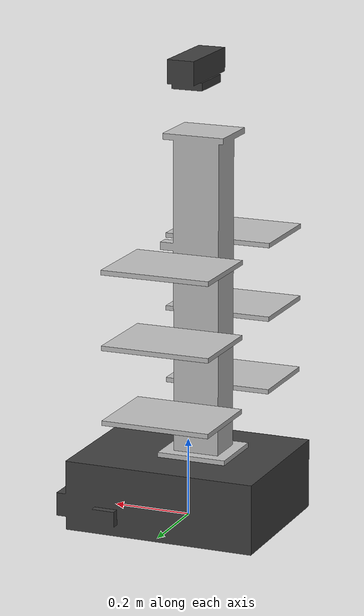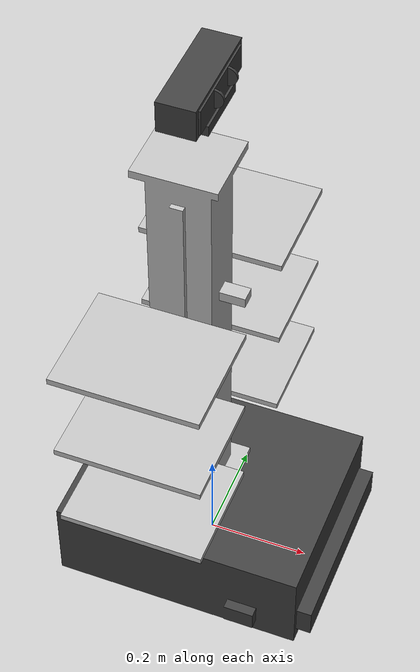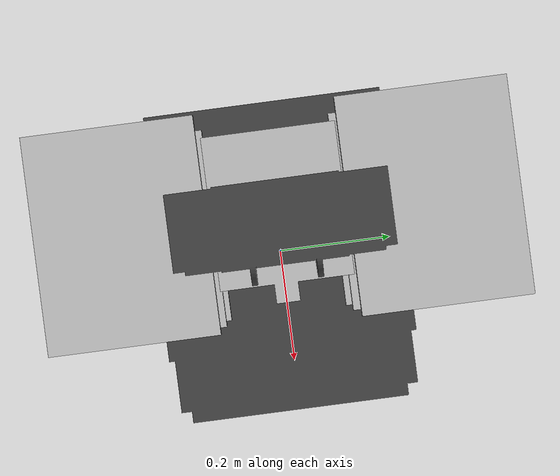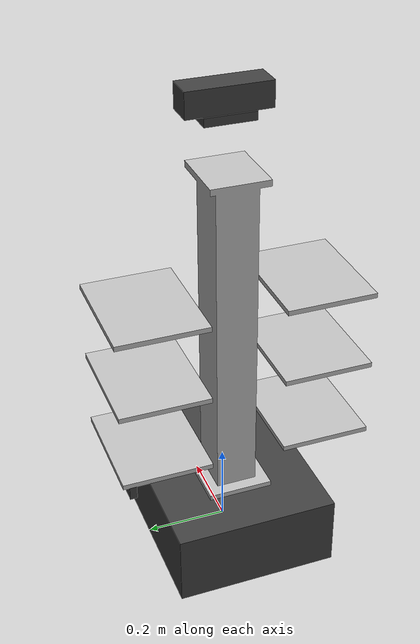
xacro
<?xml version="1.0"?>

<robot name="delivery_robot" xmlns:xacro="http://www.ros.org/wiki/xacro">

  <!-- ======================================================================
       EXTERNAL MACRO FILES
       ====================================================================== -->
  <xacro:include filename="$(find robot_description_pkg)/urdf/materials.xacro"/>
  <xacro:include filename="$(find robot_description_pkg)/urdf/inertia_macros.xacro"/>

  <!-- ======================================================================
       GLOBAL ROBOT PARAMETERS
       ====================================================================== -->

  <!-- Chassis -->
  <xacro:property name="chassis_length"       value="0.500"/>
  <xacro:property name="chassis_width"        value="0.400"/>
  <xacro:property name="chassis_height"       value="0.180"/>
  <xacro:property name="chassis_mass"         value="18.0"/>

  <!-- Body Column -->
  <xacro:property name="body_length"          value="0.120"/>
  <xacro:property name="body_width"           value="0.100"/>
  <xacro:property name="body_height"          value="0.820"/>
  <xacro:property name="body_mass"            value="6.0"/>
  <xacro:property name="body_z_offset"        value="${chassis_height / 2.0 + body_height / 2.0}"/>

  <!-- Wheels (parameters exported for wheels.xacro) -->
  <xacro:property name="wheel_radius"         value="0.080"/>
  <xacro:property name="wheel_width"          value="0.055"/>
  <xacro:property name="wheel_mass"           value="1.20"/>
  <xacro:property name="wheel_x_offset"       value="0.140"/>
  <xacro:property name="wheel_y_offset"       value="0.230"/>
  <xacro:property name="wheel_z_offset"       value="0.0"/>

  <!-- Casters -->
  <xacro:property name="caster_radius"        value="0.045"/>
  <xacro:property name="caster_mass"          value="0.30"/>
  <xacro:property name="caster_x_offset"      value="-0.175"/>
  <xacro:property name="caster_y_offset"      value="0.140"/>
  <xacro:property name="caster_z_offset"      value="${-(wheel_radius - caster_radius)}"/>

  <!-- Shelves -->
  <xacro:property name="shelf_length"         value="0.280"/>
  <xacro:property name="shelf_width"          value="0.220"/>
  <xacro:property name="shelf_thickness"      value="0.012"/>
  <xacro:property name="shelf_mass"           value="0.50"/>
  <xacro:property name="shelf1_z"             value="0.620"/>
  <xacro:property name="shelf2_z"             value="0.430"/>
  <xacro:property name="shelf3_z"             value="0.240"/>
  <xacro:property name="shelf_x_side"         value="0.200"/>

  <!-- Head -->
  <xacro:property name="head_length"          value="0.070"/>
  <xacro:property name="head_width"           value="0.200"/>
  <xacro:property name="head_height"          value="0.060"/>
  <xacro:property name="head_mass"            value="0.80"/>
  <xacro:property name="head_z"               value="1.080"/>

  <!-- Math -->
  <xacro:property name="M_PI"                 value="3.14159265358979"/>

  <!-- ======================================================================
       BASE FOOTPRINT
       ====================================================================== -->
  <link name="base_footprint"/>

  <joint name="base_footprint_joint" type="fixed">
    <parent link="base_footprint"/>
    <child  link="base_link"/>
    <origin xyz="0 0 ${wheel_radius}" rpy="0 0 0"/>
  </joint>

  <!-- ======================================================================
       BASE LINK
       ====================================================================== -->
  <link name="base_link">
    <visual>
      <origin xyz="0 0 0" rpy="0 0 0"/>
      <geometry>
        <mesh filename="package://robot_description_pkg/meshes/chassis.stl" scale="1 1 1"/>
      </geometry>
      <material name="dark_grey">
        <color rgba="0.25 0.25 0.25 1.0"/>
      </material>
    </visual>

    <collision>
      <origin xyz="0 0 0" rpy="0 0 0"/>
      <geometry>
        <box size="${chassis_length} ${chassis_width} ${chassis_height}"/>
      </geometry>
    </collision>

    <inertial>
      <origin xyz="0 0 0" rpy="0 0 0"/>
      <mass value="${chassis_mass}"/>
      <xacro:box_inertia
        m="${chassis_mass}"
        x="${chassis_length}"
        y="${chassis_width}"
        z="${chassis_height}"/>
    </inertial>
  </link>

  <!-- Define remaining materials once (referenced later by name only) -->
  <material name="almost_black">
    <color rgba="0.10 0.10 0.10 1.0"/>
  </material>
  <material name="light_grey">
    <color rgba="0.75 0.75 0.75 1.0"/>
  </material>
  <material name="mid_grey">
    <color rgba="0.50 0.50 0.50 1.0"/>
  </material>
  <material name="green">
    <color rgba="0.10 0.80 0.10 1.0"/>
  </material>

  <!-- ======================================================================
       BODY COLUMN
       ====================================================================== -->
  <link name="body_link">
    <visual>
      <origin xyz="0 0 0" rpy="0 0 0"/>
      <geometry>
        <mesh filename="package://robot_description_pkg/meshes/body_column.stl" scale="1 1 1"/>
      </geometry>
      <material name="light_grey"/>
    </visual>
    <collision>
      <origin xyz="0 0 0" rpy="0 0 0"/>
      <geometry>
        <box size="${body_length} ${body_width} ${body_height}"/>
      </geometry>
    </collision>
    <inertial>
      <origin xyz="0 0 0" rpy="0 0 0"/>
      <mass value="${body_mass}"/>
      <xacro:box_inertia
        m="${body_mass}"
        x="${body_length}"
        y="${body_width}"
        z="${body_height}"/>
    </inertial>
  </link>

  <joint name="body_joint" type="fixed">
    <parent link="base_link"/>
    <child  link="body_link"/>
    <origin xyz="-0.040 0 ${body_z_offset}" rpy="0 0 0"/>
  </joint>

  <!-- ======================================================================
       SHELVES (6 total: 3 left + 3 right)
       ====================================================================== -->

  <!-- Shelf 1 LEFT -->
  <link name="shelf1_left_link">
    <visual>
      <origin xyz="0 0 0" rpy="0 0 0"/>
      <geometry>
        <box size="${shelf_length} ${shelf_width} ${shelf_thickness}"/>
      </geometry>
      <material name="light_grey"/>
    </visual>
    <collision>
      <origin xyz="0 0 0" rpy="0 0 0"/>
      <geometry>
        <box size="${shelf_length} ${shelf_width} ${shelf_thickness}"/>
      </geometry>
    </collision>
    <inertial>
      <origin xyz="0 0 0" rpy="0 0 0"/>
      <mass value="${shelf_mass}"/>
      <xacro:box_inertia m="${shelf_mass}" x="${shelf_length}" y="${shelf_width}" z="${shelf_thickness}"/>
    </inertial>
  </link>

  <joint name="shelf1_left_joint" type="fixed">
    <parent link="body_link"/>
    <child  link="shelf1_left_link"/>
    <origin xyz="0 ${shelf_x_side} ${shelf1_z - body_z_offset}" rpy="0 0 0"/>
  </joint>

  <!-- Shelf 1 RIGHT -->
  <link name="shelf1_right_link">
    <visual>
      <origin xyz="0 0 0" rpy="0 0 0"/>
      <geometry>
        <box size="${shelf_length} ${shelf_width} ${shelf_thickness}"/>
      </geometry>
      <material name="light_grey"/>
    </visual>
    <collision>
      <origin xyz="0 0 0" rpy="0 0 0"/>
      <geometry>
        <box size="${shelf_length} ${shelf_width} ${shelf_thickness}"/>
      </geometry>
    </collision>
    <inertial>
      <origin xyz="0 0 0" rpy="0 0 0"/>
      <mass value="${shelf_mass}"/>
      <xacro:box_inertia m="${shelf_mass}" x="${shelf_length}" y="${shelf_width}" z="${shelf_thickness}"/>
    </inertial>
  </link>

  <joint name="shelf1_right_joint" type="fixed">
    <parent link="body_link"/>
    <child  link="shelf1_right_link"/>
    <origin xyz="0 ${-shelf_x_side} ${shelf1_z - body_z_offset}" rpy="0 0 0"/>
  </joint>

  <!-- Shelf 2 LEFT -->
  <link name="shelf2_left_link">
    <visual>
      <origin xyz="0 0 0" rpy="0 0 0"/>
      <geometry>
        <box size="${shelf_length} ${shelf_width} ${shelf_thickness}"/>
      </geometry>
      <material name="light_grey"/>
    </visual>
    <collision>
      <origin xyz="0 0 0" rpy="0 0 0"/>
      <geometry>
        <box size="${shelf_length} ${shelf_width} ${shelf_thickness}"/>
      </geometry>
    </collision>
    <inertial>
      <origin xyz="0 0 0" rpy="0 0 0"/>
      <mass value="${shelf_mass}"/>
      <xacro:box_inertia m="${shelf_mass}" x="${shelf_length}" y="${shelf_width}" z="${shelf_thickness}"/>
    </inertial>
  </link>

  <joint name="shelf2_left_joint" type="fixed">
    <parent link="body_link"/>
    <child  link="shelf2_left_link"/>
    <origin xyz="0 ${shelf_x_side} ${shelf2_z - body_z_offset}" rpy="0 0 0"/>
  </joint>

  <!-- Shelf 2 RIGHT -->
  <link name="shelf2_right_link">
    <visual>
      <origin xyz="0 0 0" rpy="0 0 0"/>
      <geometry>
        <box size="${shelf_length} ${shelf_width} ${shelf_thickness}"/>
      </geometry>
      <material name="light_grey"/>
    </visual>
    <collision>
      <origin xyz="0 0 0" rpy="0 0 0"/>
      <geometry>
        <box size="${shelf_length} ${shelf_width} ${shelf_thickness}"/>
      </geometry>
    </collision>
    <inertial>
      <origin xyz="0 0 0" rpy="0 0 0"/>
      <mass value="${shelf_mass}"/>
      <xacro:box_inertia m="${shelf_mass}" x="${shelf_length}" y="${shelf_width}" z="${shelf_thickness}"/>
    </inertial>
  </link>

  <joint name="shelf2_right_joint" type="fixed">
    <parent link="body_link"/>
    <child  link="shelf2_right_link"/>
    <origin xyz="0 ${-shelf_x_side} ${shelf2_z - body_z_offset}" rpy="0 0 0"/>
  </joint>

  <!-- Shelf 3 LEFT -->
  <link name="shelf3_left_link">
    <visual>
      <origin xyz="0 0 0" rpy="0 0 0"/>
      <geometry>
        <box size="${shelf_length} ${shelf_width} ${shelf_thickness}"/>
      </geometry>
      <material name="light_grey"/>
    </visual>
    <collision>
      <origin xyz="0 0 0" rpy="0 0 0"/>
      <geometry>
        <box size="${shelf_length} ${shelf_width} ${shelf_thickness}"/>
      </geometry>
    </collision>
    <inertial>
      <origin xyz="0 0 0" rpy="0 0 0"/>
      <mass value="${shelf_mass}"/>
      <xacro:box_inertia m="${shelf_mass}" x="${shelf_length}" y="${shelf_width}" z="${shelf_thickness}"/>
    </inertial>
  </link>

  <joint name="shelf3_left_joint" type="fixed">
    <parent link="body_link"/>
    <child  link="shelf3_left_link"/>
    <origin xyz="0 ${shelf_x_side} ${shelf3_z - body_z_offset}" rpy="0 0 0"/>
  </joint>

  <!-- Shelf 3 RIGHT -->
  <link name="shelf3_right_link">
    <visual>
      <origin xyz="0 0 0" rpy="0 0 0"/>
      <geometry>
        <box size="${shelf_length} ${shelf_width} ${shelf_thickness}"/>
      </geometry>
      <material name="light_grey"/>
    </visual>
    <collision>
      <origin xyz="0 0 0" rpy="0 0 0"/>
      <geometry>
        <box size="${shelf_length} ${shelf_width} ${shelf_thickness}"/>
      </geometry>
    </collision>
    <inertial>
      <origin xyz="0 0 0" rpy="0 0 0"/>
      <mass value="${shelf_mass}"/>
      <xacro:box_inertia m="${shelf_mass}" x="${shelf_length}" y="${shelf_width}" z="${shelf_thickness}"/>
    </inertial>
  </link>

  <joint name="shelf3_right_joint" type="fixed">
    <parent link="body_link"/>
    <child  link="shelf3_right_link"/>
    <origin xyz="0 ${-shelf_x_side} ${shelf3_z - body_z_offset}" rpy="0 0 0"/>
  </joint>

  <!-- ======================================================================
       HEAD
       ====================================================================== -->
  <link name="head_link">
    <visual>
      <origin xyz="0 0 0" rpy="0 0 0"/>
      <geometry>
        <mesh filename="package://robot_description_pkg/meshes/head.stl" scale="1 1 1"/>
      </geometry>
      <material name="dark_grey"/>
    </visual>
    <collision>
      <origin xyz="0 0 0" rpy="0 0 0"/>
      <geometry>
        <box size="${head_length} ${head_width} ${head_height}"/>
      </geometry>
    </collision>
    <inertial>
      <origin xyz="0 0 0" rpy="0 0 0"/>
      <mass value="${head_mass}"/>
      <xacro:box_inertia m="${head_mass}" x="${head_length}" y="${head_width}" z="${head_height}"/>
    </inertial>
  </link>

  <joint name="head_joint" type="fixed">
    <parent link="body_link"/>
    <child  link="head_link"/>
    <origin xyz="0.020 0 ${head_z - body_z_offset}" rpy="0 0 0"/>
  </joint>

  <!-- ======================================================================
       GAZEBO MATERIALS
       ====================================================================== -->

  <gazebo reference="base_link">
    <material>Gazebo/DarkGrey</material>
  </gazebo>

  <gazebo reference="body_link">
    <material>Gazebo/White</material>
  </gazebo>

  <gazebo reference="head_link">
    <material>Gazebo/DarkGrey</material>
  </gazebo>

</robot>

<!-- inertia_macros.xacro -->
<robot xmlns:xacro="http://www.ros.org/wiki/xacro">

  <xacro:macro name="box_inertia" params="m x y z">
    <inertia
      ixx="${m / 12.0 * (y*y + z*z)}"
      ixy="0.0"
      ixz="0.0"
      iyy="${m / 12.0 * (x*x + z*z)}"
      iyz="0.0"
      izz="${m / 12.0 * (x*x + y*y)}"/>
  </xacro:macro>

  <xacro:macro name="cylinder_inertia" params="m r h">
    <inertia
      ixx="${m / 12.0 * (3.0*r*r + h*h)}"
      ixy="0.0"
      ixz="0.0"
      iyy="${m / 12.0 * (3.0*r*r + h*h)}"
      iyz="0.0"
      izz="${m / 2.0  * r*r}"/>
  </xacro:macro>

  <xacro:macro name="sphere_inertia" params="m r">
    <inertia
      ixx="${2.0 / 5.0 * m * r*r}"
      ixy="0.0"
      ixz="0.0"
      iyy="${2.0 / 5.0 * m * r*r}"
      iyz="0.0"
      izz="${2.0 / 5.0 * m * r*r}"/>
  </xacro:macro>

  <xacro:macro name="hollow_cylinder_inertia" params="m r_o r_i h">
    <inertia
      ixx="${m / 12.0 * (3.0*(r_o*r_o + r_i*r_i) + h*h)}"
      ixy="0.0"
      ixz="0.0"
      iyy="${m / 12.0 * (3.0*(r_o*r_o + r_i*r_i) + h*h)}"
      iyz="0.0"
      izz="${m / 2.0  * (r_o*r_o + r_i*r_i)}"/>
  </xacro:macro>

</robot>
